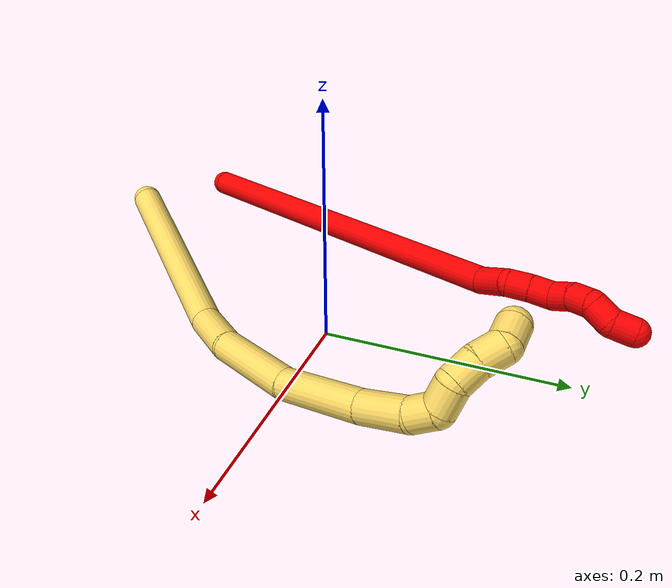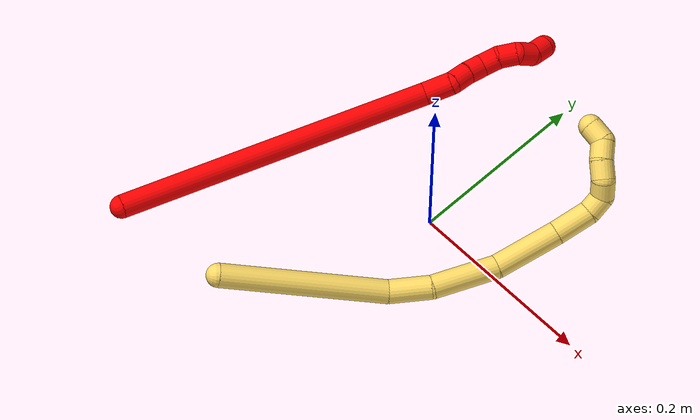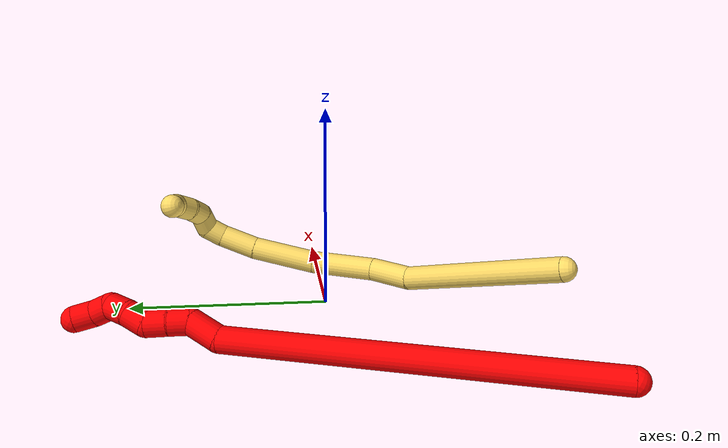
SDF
<sdf version="1.7">
 <world name="default">
  <model name="2">
   <static>0</static>
   <link name="2">
    <collision name="collision-cylinder-e_1_1_4">
     <pose>0.067308 0.139114 -0.078874 -2.08657 0.398384 -0.667127</pose>
     <geometry><cylinder><radius>0.0125</radius><length>0.347012</length></cylinder></geometry>
     <surface>
      <friction><ode><mu>1.16</mu><mu2>1.16</mu2><slip1>0</slip1><slip2>0</slip2></ode></friction>
      <contact><ode><kp>1e+06</kp><kd>1</kd><max_vel>0</max_vel><min_depth>0.001</min_depth></ode></contact>
     </surface>
    </collision>
    <visual name="visual-cylinder-e_1_1_4">
     <pose>0.067308 0.139114 -0.078874 -2.08657 0.398384 -0.667127</pose>
     <geometry><cylinder><radius>0.0125</radius><length>0.347012</length></cylinder></geometry>
     <material><ambient>1 0 0 1</ambient></material>
    </visual>
    <collision name="collision-cylinder-e_2_4_5">
     <pose>0.143535 0.291466 -0.15877 -1.6479 0.591532 -0.635964</pose>
     <geometry><cylinder><radius>0.0125</radius><length>0.031987</length></cylinder></geometry>
     <surface>
      <friction><ode><mu>1.16</mu><mu2>1.16</mu2><slip1>0</slip1><slip2>0</slip2></ode></friction>
      <contact><ode><kp>1e+06</kp><kd>1</kd><max_vel>0</max_vel><min_depth>0.001</min_depth></ode></contact>
     </surface>
    </collision>
    <visual name="visual-cylinder-e_2_4_5">
     <pose>0.143535 0.291466 -0.15877 -1.6479 0.591532 -0.635964</pose>
     <geometry><cylinder><radius>0.0125</radius><length>0.031987</length></cylinder></geometry>
     <material><ambient>1 0 0 1</ambient></material>
    </visual>
    <collision name="collision-cylinder-e_3_5_6">
     <pose>0.153663 0.313304 -0.164899 -2.10651 0.120321 -0.210819</pose>
     <geometry><cylinder><radius>0.0125</radius><length>0.020152</length></cylinder></geometry>
     <surface>
      <friction><ode><mu>1.16</mu><mu2>1.16</mu2><slip1>0</slip1><slip2>0</slip2></ode></friction>
      <contact><ode><kp>1e+06</kp><kd>1</kd><max_vel>0</max_vel><min_depth>0.001</min_depth></ode></contact>
     </surface>
    </collision>
    <visual name="visual-cylinder-e_3_5_6">
     <pose>0.153663 0.313304 -0.164899 -2.10651 0.120321 -0.210819</pose>
     <geometry><cylinder><radius>0.0125</radius><length>0.020152</length></cylinder></geometry>
     <material><ambient>1 0 0 1</ambient></material>
    </visual>
    <collision name="collision-cylinder-e_4_6_7">
     <pose>0.157014 0.330167 -0.1756 -2.16618 0.211487 -0.394972</pose>
     <geometry><cylinder><radius>0.0125</radius><length>0.02041</length></cylinder></geometry>
     <surface>
      <friction><ode><mu>1.16</mu><mu2>1.16</mu2><slip1>0</slip1><slip2>0</slip2></ode></friction>
      <contact><ode><kp>1e+06</kp><kd>1</kd><max_vel>0</max_vel><min_depth>0.001</min_depth></ode></contact>
     </surface>
    </collision>
    <visual name="visual-cylinder-e_4_6_7">
     <pose>0.157014 0.330167 -0.1756 -2.16618 0.211487 -0.394972</pose>
     <geometry><cylinder><radius>0.0125</radius><length>0.02041</length></cylinder></geometry>
     <material><ambient>1 0 0 1</ambient></material>
    </visual>
    <collision name="collision-cylinder-e_5_7_8">
     <pose>0.164011 0.347211 -0.181835 -1.64336 0.503778 -0.539968</pose>
     <geometry><cylinder><radius>0.0125</radius><length>0.020113</length></cylinder></geometry>
     <surface>
      <friction><ode><mu>1.16</mu><mu2>1.16</mu2><slip1>0</slip1><slip2>0</slip2></ode></friction>
      <contact><ode><kp>1e+06</kp><kd>1</kd><max_vel>0</max_vel><min_depth>0.001</min_depth></ode></contact>
     </surface>
    </collision>
    <visual name="visual-cylinder-e_5_7_8">
     <pose>0.164011 0.347211 -0.181835 -1.64336 0.503778 -0.539968</pose>
     <geometry><cylinder><radius>0.0125</radius><length>0.020113</length></cylinder></geometry>
     <material><ambient>1 0 0 1</ambient></material>
    </visual>
    <collision name="collision-cylinder-e_6_8_9">
     <pose>0.175207 0.363384 -0.185055 -1.90699 0.68097 -0.925858</pose>
     <geometry><cylinder><radius>0.0125</radius><length>0.020147</length></cylinder></geometry>
     <surface>
      <friction><ode><mu>1.16</mu><mu2>1.16</mu2><slip1>0</slip1><slip2>0</slip2></ode></friction>
      <contact><ode><kp>1e+06</kp><kd>1</kd><max_vel>0</max_vel><min_depth>0.001</min_depth></ode></contact>
     </surface>
    </collision>
    <visual name="visual-cylinder-e_6_8_9">
     <pose>0.175207 0.363384 -0.185055 -1.90699 0.68097 -0.925858</pose>
     <geometry><cylinder><radius>0.0125</radius><length>0.020147</length></cylinder></geometry>
     <material><ambient>1 0 0 1</ambient></material>
    </visual>
    <collision name="collision-cylinder-e_7_9_10">
     <pose>0.18563 0.375357 -0.195624 -2.62054 0.417136 -1.34204</pose>
     <geometry><cylinder><radius>0.0125</radius><length>0.020146</length></cylinder></geometry>
     <surface>
      <friction><ode><mu>1.16</mu><mu2>1.16</mu2><slip1>0</slip1><slip2>0</slip2></ode></friction>
      <contact><ode><kp>1e+06</kp><kd>1</kd><max_vel>0</max_vel><min_depth>0.001</min_depth></ode></contact>
     </surface>
    </collision>
    <visual name="visual-cylinder-e_7_9_10">
     <pose>0.18563 0.375357 -0.195624 -2.62054 0.417136 -1.34204</pose>
     <geometry><cylinder><radius>0.0125</radius><length>0.020146</length></cylinder></geometry>
     <material><ambient>1 0 0 1</ambient></material>
    </visual>
    <collision name="collision-cylinder-e_8_10_2">
     <pose>0.189861 0.387256 -0.210453 -2.32278 0.014947 -0.034444</pose>
     <geometry><cylinder><radius>0.0125</radius><length>0.020034</length></cylinder></geometry>
     <surface>
      <friction><ode><mu>1.16</mu><mu2>1.16</mu2><slip1>0</slip1><slip2>0</slip2></ode></friction>
      <contact><ode><kp>1e+06</kp><kd>1</kd><max_vel>0</max_vel><min_depth>0.001</min_depth></ode></contact>
     </surface>
    </collision>
    <visual name="visual-cylinder-e_8_10_2">
     <pose>0.189861 0.387256 -0.210453 -2.32278 0.014947 -0.034444</pose>
     <geometry><cylinder><radius>0.0125</radius><length>0.020034</length></cylinder></geometry>
     <material><ambient>1 0 0 1</ambient></material>
    </visual>
    <collision name="collision-sphere-2">
     <pose>0.19001 0.394571 -0.217295 0 -0 0</pose>
     <geometry><sphere><radius>0.0125</radius></sphere></geometry>
     <surface>
      <friction><ode><mu>1.16</mu><mu2>1.16</mu2><slip1>0</slip1><slip2>0</slip2></ode></friction>
      <contact><ode><kp>1e+06</kp><kd>1</kd><max_vel>0</max_vel><min_depth>0.001</min_depth></ode></contact>
     </surface>
    </collision>
    <visual name="visual-sphere-2">
     <pose>0.19001 0.394571 -0.217295 0 -0 0</pose>
     <geometry><sphere><radius>0.0125</radius></sphere></geometry>
     <material><ambient>1 0 0 1</ambient></material>
    </visual>
    <collision name="collision-sphere-10">
     <pose>0.189711 0.379941 -0.203611 0 -0 0</pose>
     <geometry><sphere><radius>0.0125</radius></sphere></geometry>
     <surface>
      <friction><ode><mu>1.16</mu><mu2>1.16</mu2><slip1>0</slip1><slip2>0</slip2></ode></friction>
      <contact><ode><kp>1e+06</kp><kd>1</kd><max_vel>0</max_vel><min_depth>0.001</min_depth></ode></contact>
     </surface>
    </collision>
    <visual name="visual-sphere-10">
     <pose>0.189711 0.379941 -0.203611 0 -0 0</pose>
     <geometry><sphere><radius>0.0125</radius></sphere></geometry>
     <material><ambient>1 0 0 1</ambient></material>
    </visual>
    <collision name="collision-sphere-9">
     <pose>0.181549 0.370772 -0.187637 0 -0 0</pose>
     <geometry><sphere><radius>0.0125</radius></sphere></geometry>
     <surface>
      <friction><ode><mu>1.16</mu><mu2>1.16</mu2><slip1>0</slip1><slip2>0</slip2></ode></friction>
      <contact><ode><kp>1e+06</kp><kd>1</kd><max_vel>0</max_vel><min_depth>0.001</min_depth></ode></contact>
     </surface>
    </collision>
    <visual name="visual-sphere-9">
     <pose>0.181549 0.370772 -0.187637 0 -0 0</pose>
     <geometry><sphere><radius>0.0125</radius></sphere></geometry>
     <material><ambient>1 0 0 1</ambient></material>
    </visual>
    <collision name="collision-sphere-4">
     <pose>0.134616 0.278229 -0.157747 0 -0 0</pose>
     <geometry><sphere><radius>0.0125</radius></sphere></geometry>
     <surface>
      <friction><ode><mu>1.16</mu><mu2>1.16</mu2><slip1>0</slip1><slip2>0</slip2></ode></friction>
      <contact><ode><kp>1e+06</kp><kd>1</kd><max_vel>0</max_vel><min_depth>0.001</min_depth></ode></contact>
     </surface>
    </collision>
    <visual name="visual-sphere-4">
     <pose>0.134616 0.278229 -0.157747 0 -0 0</pose>
     <geometry><sphere><radius>0.0125</radius></sphere></geometry>
     <material><ambient>1 0 0 1</ambient></material>
    </visual>
    <collision name="collision-sphere-1">
     <geometry><sphere><radius>0.0125</radius></sphere></geometry>
     <surface>
      <friction><ode><mu>1.16</mu><mu2>1.16</mu2><slip1>0</slip1><slip2>0</slip2></ode></friction>
      <contact><ode><kp>1e+06</kp><kd>1</kd><max_vel>0</max_vel><min_depth>0.001</min_depth></ode></contact>
     </surface>
    </collision>
    <visual name="visual-sphere-1">
     <geometry><sphere><radius>0.0125</radius></sphere></geometry>
     <material><ambient>1 0 0 1</ambient></material>
    </visual>
    <collision name="collision-sphere-8">
     <pose>0.168866 0.355995 -0.182473 0 -0 0</pose>
     <geometry><sphere><radius>0.0125</radius></sphere></geometry>
     <surface>
      <friction><ode><mu>1.16</mu><mu2>1.16</mu2><slip1>0</slip1><slip2>0</slip2></ode></friction>
      <contact><ode><kp>1e+06</kp><kd>1</kd><max_vel>0</max_vel><min_depth>0.001</min_depth></ode></contact>
     </surface>
    </collision>
    <visual name="visual-sphere-8">
     <pose>0.168866 0.355995 -0.182473 0 -0 0</pose>
     <geometry><sphere><radius>0.0125</radius></sphere></geometry>
     <material><ambient>1 0 0 1</ambient></material>
    </visual>
    <collision name="collision-sphere-5">
     <pose>0.152453 0.304702 -0.159792 0 -0 0</pose>
     <geometry><sphere><radius>0.0125</radius></sphere></geometry>
     <surface>
      <friction><ode><mu>1.16</mu><mu2>1.16</mu2><slip1>0</slip1><slip2>0</slip2></ode></friction>
      <contact><ode><kp>1e+06</kp><kd>1</kd><max_vel>0</max_vel><min_depth>0.001</min_depth></ode></contact>
     </surface>
    </collision>
    <visual name="visual-sphere-5">
     <pose>0.152453 0.304702 -0.159792 0 -0 0</pose>
     <geometry><sphere><radius>0.0125</radius></sphere></geometry>
     <material><ambient>1 0 0 1</ambient></material>
    </visual>
    <collision name="collision-sphere-6">
     <pose>0.154872 0.321906 -0.170005 0 -0 0</pose>
     <geometry><sphere><radius>0.0125</radius></sphere></geometry>
     <surface>
      <friction><ode><mu>1.16</mu><mu2>1.16</mu2><slip1>0</slip1><slip2>0</slip2></ode></friction>
      <contact><ode><kp>1e+06</kp><kd>1</kd><max_vel>0</max_vel><min_depth>0.001</min_depth></ode></contact>
     </surface>
    </collision>
    <visual name="visual-sphere-6">
     <pose>0.154872 0.321906 -0.170005 0 -0 0</pose>
     <geometry><sphere><radius>0.0125</radius></sphere></geometry>
     <material><ambient>1 0 0 1</ambient></material>
    </visual>
    <collision name="collision-sphere-7">
     <pose>0.159156 0.338427 -0.181196 0 -0 0</pose>
     <geometry><sphere><radius>0.0125</radius></sphere></geometry>
     <surface>
      <friction><ode><mu>1.16</mu><mu2>1.16</mu2><slip1>0</slip1><slip2>0</slip2></ode></friction>
      <contact><ode><kp>1e+06</kp><kd>1</kd><max_vel>0</max_vel><min_depth>0.001</min_depth></ode></contact>
     </surface>
    </collision>
    <visual name="visual-sphere-7">
     <pose>0.159156 0.338427 -0.181196 0 -0 0</pose>
     <geometry><sphere><radius>0.0125</radius></sphere></geometry>
     <material><ambient>1 0 0 1</ambient></material>
    </visual>
    <inertial>
     <pose>0.097242 0.200549 -0.109797 0 -0 0</pose>
     <mass>0.5</mass>
     <inertia>
      <ixx>0.000556</ixx>
      <ixy>0</ixy>
      <ixz>0</ixz>
      <iyy>-0.002594</iyy>
      <iyz>0</iyz>
      <izz>-0.004191</izz>
     </inertia>
    </inertial>
   </link>
   <pose>-0.229651 -0.222519 0.011493 0.497434 -0.043542 0.061144</pose>
  </model>
  <model name="5">
   <static>0</static>
   <link name="5">
    <collision name="collision-cylinder-e_1_1_4">
     <pose>0.004571 -0.004872 -0.08706 3.08569 0.052377 1.50575</pose>
     <geometry><cylinder><radius>0.0125</radius><length>0.174631</length></cylinder></geometry>
     <surface>
      <friction><ode><mu>1.16</mu><mu2>1.16</mu2><slip1>0</slip1><slip2>0</slip2></ode></friction>
      <contact><ode><kp>1e+06</kp><kd>1</kd><max_vel>0</max_vel><min_depth>0.001</min_depth></ode></contact>
     </surface>
    </collision>
    <visual name="visual-cylinder-e_1_1_4">
     <pose>0.004571 -0.004872 -0.08706 3.08569 0.052377 1.50575</pose>
     <geometry><cylinder><radius>0.0125</radius><length>0.174631</length></cylinder></geometry>
     <material><ambient>1 0.858824 0.4 1</ambient></material>
    </visual>
    <collision name="collision-cylinder-e_2_4_5">
     <pose>0.01321 -0.004992 -0.195615 -2.92406 0.182708 -1.39607</pose>
     <geometry><cylinder><radius>0.0125</radius><length>0.044774</length></cylinder></geometry>
     <surface>
      <friction><ode><mu>1.16</mu><mu2>1.16</mu2><slip1>0</slip1><slip2>0</slip2></ode></friction>
      <contact><ode><kp>1e+06</kp><kd>1</kd><max_vel>0</max_vel><min_depth>0.001</min_depth></ode></contact>
     </surface>
    </collision>
    <visual name="visual-cylinder-e_2_4_5">
     <pose>0.01321 -0.004992 -0.195615 -2.92406 0.182708 -1.39607</pose>
     <geometry><cylinder><radius>0.0125</radius><length>0.044774</length></cylinder></geometry>
     <material><ambient>1 0.858824 0.4 1</ambient></material>
    </visual>
    <collision name="collision-cylinder-e_3_5_6">
     <pose>0.015858 0.011204 -0.250167 -2.80829 -0.040549 0.239934</pose>
     <geometry><cylinder><radius>0.0125</radius><length>0.070021</length></cylinder></geometry>
     <surface>
      <friction><ode><mu>1.16</mu><mu2>1.16</mu2><slip1>0</slip1><slip2>0</slip2></ode></friction>
      <contact><ode><kp>1e+06</kp><kd>1</kd><max_vel>0</max_vel><min_depth>0.001</min_depth></ode></contact>
     </surface>
    </collision>
    <visual name="visual-cylinder-e_3_5_6">
     <pose>0.015858 0.011204 -0.250167 -2.80829 -0.040549 0.239934</pose>
     <geometry><cylinder><radius>0.0125</radius><length>0.070021</length></cylinder></geometry>
     <material><ambient>1 0.858824 0.4 1</ambient></material>
    </visual>
    <collision name="collision-cylinder-e_4_6_7">
     <pose>0.012247 0.041225 -0.313023 -2.58417 -0.062342 0.21707</pose>
     <geometry><cylinder><radius>0.0125</radius><length>0.070366</length></cylinder></geometry>
     <surface>
      <friction><ode><mu>1.16</mu><mu2>1.16</mu2><slip1>0</slip1><slip2>0</slip2></ode></friction>
      <contact><ode><kp>1e+06</kp><kd>1</kd><max_vel>0</max_vel><min_depth>0.001</min_depth></ode></contact>
     </surface>
    </collision>
    <visual name="visual-cylinder-e_4_6_7">
     <pose>0.012247 0.041225 -0.313023 -2.58417 -0.062342 0.21707</pose>
     <geometry><cylinder><radius>0.0125</radius><length>0.070366</length></cylinder></geometry>
     <material><ambient>1 0.858824 0.4 1</ambient></material>
    </visual>
    <collision name="collision-cylinder-e_5_7_8">
     <pose>0.010569 0.072078 -0.358675 -2.48264 0.025636 -0.074941</pose>
     <geometry><cylinder><radius>0.0125</radius><length>0.040117</length></cylinder></geometry>
     <surface>
      <friction><ode><mu>1.16</mu><mu2>1.16</mu2><slip1>0</slip1><slip2>0</slip2></ode></friction>
      <contact><ode><kp>1e+06</kp><kd>1</kd><max_vel>0</max_vel><min_depth>0.001</min_depth></ode></contact>
     </surface>
    </collision>
    <visual name="visual-cylinder-e_5_7_8">
     <pose>0.010569 0.072078 -0.358675 -2.48264 0.025636 -0.074941</pose>
     <geometry><cylinder><radius>0.0125</radius><length>0.040117</length></cylinder></geometry>
     <material><ambient>1 0.858824 0.4 1</ambient></material>
    </visual>
    <collision name="collision-cylinder-e_6_8_9">
     <pose>0.010608 0.092575 -0.380247 -2.17863 -0.047495 0.090855</pose>
     <geometry><cylinder><radius>0.0125</radius><length>0.020047</length></cylinder></geometry>
     <surface>
      <friction><ode><mu>1.16</mu><mu2>1.16</mu2><slip1>0</slip1><slip2>0</slip2></ode></friction>
      <contact><ode><kp>1e+06</kp><kd>1</kd><max_vel>0</max_vel><min_depth>0.001</min_depth></ode></contact>
     </surface>
    </collision>
    <visual name="visual-cylinder-e_6_8_9">
     <pose>0.010608 0.092575 -0.380247 -2.17863 -0.047495 0.090855</pose>
     <geometry><cylinder><radius>0.0125</radius><length>0.020047</length></cylinder></geometry>
     <material><ambient>1 0.858824 0.4 1</ambient></material>
    </visual>
    <collision name="collision-cylinder-e_7_9_10">
     <pose>0.011552 0.110601 -0.384517 -1.42423 0.142286 -0.122876</pose>
     <geometry><cylinder><radius>0.0125</radius><length>0.02003</length></cylinder></geometry>
     <surface>
      <friction><ode><mu>1.16</mu><mu2>1.16</mu2><slip1>0</slip1><slip2>0</slip2></ode></friction>
      <contact><ode><kp>1e+06</kp><kd>1</kd><max_vel>0</max_vel><min_depth>0.001</min_depth></ode></contact>
     </surface>
    </collision>
    <visual name="visual-cylinder-e_7_9_10">
     <pose>0.011552 0.110601 -0.384517 -1.42423 0.142286 -0.122876</pose>
     <geometry><cylinder><radius>0.0125</radius><length>0.02003</length></cylinder></geometry>
     <material><ambient>1 0.858824 0.4 1</ambient></material>
    </visual>
    <collision name="collision-cylinder-e_8_10_11">
     <pose>0.008685 0.129383 -0.382024 -1.45481 -0.443039 0.395752</pose>
     <geometry><cylinder><radius>0.0125</radius><length>0.020001</length></cylinder></geometry>
     <surface>
      <friction><ode><mu>1.16</mu><mu2>1.16</mu2><slip1>0</slip1><slip2>0</slip2></ode></friction>
      <contact><ode><kp>1e+06</kp><kd>1</kd><max_vel>0</max_vel><min_depth>0.001</min_depth></ode></contact>
     </surface>
    </collision>
    <visual name="visual-cylinder-e_8_10_11">
     <pose>0.008685 0.129383 -0.382024 -1.45481 -0.443039 0.395752</pose>
     <geometry><cylinder><radius>0.0125</radius><length>0.020001</length></cylinder></geometry>
     <material><ambient>1 0.858824 0.4 1</ambient></material>
    </visual>
    <collision name="collision-cylinder-e_9_11_12">
     <pose>-0.000552 0.146985 -0.382055 -1.695 -0.517536 0.582553</pose>
     <geometry><cylinder><radius>0.0125</radius><length>0.020011</length></cylinder></geometry>
     <surface>
      <friction><ode><mu>1.16</mu><mu2>1.16</mu2><slip1>0</slip1><slip2>0</slip2></ode></friction>
      <contact><ode><kp>1e+06</kp><kd>1</kd><max_vel>0</max_vel><min_depth>0.001</min_depth></ode></contact>
     </surface>
    </collision>
    <visual name="visual-cylinder-e_9_11_12">
     <pose>-0.000552 0.146985 -0.382055 -1.695 -0.517536 0.582553</pose>
     <geometry><cylinder><radius>0.0125</radius><length>0.020011</length></cylinder></geometry>
     <material><ambient>1 0.858824 0.4 1</ambient></material>
    </visual>
    <collision name="collision-cylinder-e_10_12_2">
     <pose>-0.01188 0.161061 -0.377685 -0.785427 -0.691505 0.296244</pose>
     <geometry><cylinder><radius>0.0125</radius><length>0.020002</length></cylinder></geometry>
     <surface>
      <friction><ode><mu>1.16</mu><mu2>1.16</mu2><slip1>0</slip1><slip2>0</slip2></ode></friction>
      <contact><ode><kp>1e+06</kp><kd>1</kd><max_vel>0</max_vel><min_depth>0.001</min_depth></ode></contact>
     </surface>
    </collision>
    <visual name="visual-cylinder-e_10_12_2">
     <pose>-0.01188 0.161061 -0.377685 -0.785427 -0.691505 0.296244</pose>
     <geometry><cylinder><radius>0.0125</radius><length>0.020002</length></cylinder></geometry>
     <material><ambient>1 0.858824 0.4 1</ambient></material>
    </visual>
    <collision name="collision-sphere-2">
     <pose>-0.018257 0.166508 -0.372238 0 -0 0</pose>
     <geometry><sphere><radius>0.0125</radius></sphere></geometry>
     <surface>
      <friction><ode><mu>1.16</mu><mu2>1.16</mu2><slip1>0</slip1><slip2>0</slip2></ode></friction>
      <contact><ode><kp>1e+06</kp><kd>1</kd><max_vel>0</max_vel><min_depth>0.001</min_depth></ode></contact>
     </surface>
    </collision>
    <visual name="visual-sphere-2">
     <pose>-0.018257 0.166508 -0.372238 0 -0 0</pose>
     <geometry><sphere><radius>0.0125</radius></sphere></geometry>
     <material><ambient>1 0.858824 0.4 1</ambient></material>
    </visual>
    <collision name="collision-sphere-12">
     <pose>-0.005502 0.155613 -0.383132 0 -0 0</pose>
     <geometry><sphere><radius>0.0125</radius></sphere></geometry>
     <surface>
      <friction><ode><mu>1.16</mu><mu2>1.16</mu2><slip1>0</slip1><slip2>0</slip2></ode></friction>
      <contact><ode><kp>1e+06</kp><kd>1</kd><max_vel>0</max_vel><min_depth>0.001</min_depth></ode></contact>
     </surface>
    </collision>
    <visual name="visual-sphere-12">
     <pose>-0.005502 0.155613 -0.383132 0 -0 0</pose>
     <geometry><sphere><radius>0.0125</radius></sphere></geometry>
     <material><ambient>1 0.858824 0.4 1</ambient></material>
    </visual>
    <collision name="collision-sphere-11">
     <pose>0.004398 0.138357 -0.380978 0 -0 0</pose>
     <geometry><sphere><radius>0.0125</radius></sphere></geometry>
     <surface>
      <friction><ode><mu>1.16</mu><mu2>1.16</mu2><slip1>0</slip1><slip2>0</slip2></ode></friction>
      <contact><ode><kp>1e+06</kp><kd>1</kd><max_vel>0</max_vel><min_depth>0.001</min_depth></ode></contact>
     </surface>
    </collision>
    <visual name="visual-sphere-11">
     <pose>0.004398 0.138357 -0.380978 0 -0 0</pose>
     <geometry><sphere><radius>0.0125</radius></sphere></geometry>
     <material><ambient>1 0.858824 0.4 1</ambient></material>
    </visual>
    <collision name="collision-sphere-10">
     <pose>0.012972 0.120408 -0.383069 0 -0 0</pose>
     <geometry><sphere><radius>0.0125</radius></sphere></geometry>
     <surface>
      <friction><ode><mu>1.16</mu><mu2>1.16</mu2><slip1>0</slip1><slip2>0</slip2></ode></friction>
      <contact><ode><kp>1e+06</kp><kd>1</kd><max_vel>0</max_vel><min_depth>0.001</min_depth></ode></contact>
     </surface>
    </collision>
    <visual name="visual-sphere-10">
     <pose>0.012972 0.120408 -0.383069 0 -0 0</pose>
     <geometry><sphere><radius>0.0125</radius></sphere></geometry>
     <material><ambient>1 0.858824 0.4 1</ambient></material>
    </visual>
    <collision name="collision-sphere-9">
     <pose>0.010132 0.100793 -0.385965 0 -0 0</pose>
     <geometry><sphere><radius>0.0125</radius></sphere></geometry>
     <surface>
      <friction><ode><mu>1.16</mu><mu2>1.16</mu2><slip1>0</slip1><slip2>0</slip2></ode></friction>
      <contact><ode><kp>1e+06</kp><kd>1</kd><max_vel>0</max_vel><min_depth>0.001</min_depth></ode></contact>
     </surface>
    </collision>
    <visual name="visual-sphere-9">
     <pose>0.010132 0.100793 -0.385965 0 -0 0</pose>
     <geometry><sphere><radius>0.0125</radius></sphere></geometry>
     <material><ambient>1 0.858824 0.4 1</ambient></material>
    </visual>
    <collision name="collision-sphere-4">
     <pose>0.009142 -0.009743 -0.174119 0 -0 0</pose>
     <geometry><sphere><radius>0.0125</radius></sphere></geometry>
     <surface>
      <friction><ode><mu>1.16</mu><mu2>1.16</mu2><slip1>0</slip1><slip2>0</slip2></ode></friction>
      <contact><ode><kp>1e+06</kp><kd>1</kd><max_vel>0</max_vel><min_depth>0.001</min_depth></ode></contact>
     </surface>
    </collision>
    <visual name="visual-sphere-4">
     <pose>0.009142 -0.009743 -0.174119 0 -0 0</pose>
     <geometry><sphere><radius>0.0125</radius></sphere></geometry>
     <material><ambient>1 0.858824 0.4 1</ambient></material>
    </visual>
    <collision name="collision-sphere-1">
     <geometry><sphere><radius>0.0125</radius></sphere></geometry>
     <surface>
      <friction><ode><mu>1.16</mu><mu2>1.16</mu2><slip1>0</slip1><slip2>0</slip2></ode></friction>
      <contact><ode><kp>1e+06</kp><kd>1</kd><max_vel>0</max_vel><min_depth>0.001</min_depth></ode></contact>
     </surface>
    </collision>
    <visual name="visual-sphere-1">
     <geometry><sphere><radius>0.0125</radius></sphere></geometry>
     <material><ambient>1 0.858824 0.4 1</ambient></material>
    </visual>
    <collision name="collision-sphere-8">
     <pose>0.011084 0.084356 -0.374529 0 -0 0</pose>
     <geometry><sphere><radius>0.0125</radius></sphere></geometry>
     <surface>
      <friction><ode><mu>1.16</mu><mu2>1.16</mu2><slip1>0</slip1><slip2>0</slip2></ode></friction>
      <contact><ode><kp>1e+06</kp><kd>1</kd><max_vel>0</max_vel><min_depth>0.001</min_depth></ode></contact>
     </surface>
    </collision>
    <visual name="visual-sphere-8">
     <pose>0.011084 0.084356 -0.374529 0 -0 0</pose>
     <geometry><sphere><radius>0.0125</radius></sphere></geometry>
     <material><ambient>1 0.858824 0.4 1</ambient></material>
    </visual>
    <collision name="collision-sphere-5">
     <pose>0.017278 -0.000241 -0.217111 0 -0 0</pose>
     <geometry><sphere><radius>0.0125</radius></sphere></geometry>
     <surface>
      <friction><ode><mu>1.16</mu><mu2>1.16</mu2><slip1>0</slip1><slip2>0</slip2></ode></friction>
      <contact><ode><kp>1e+06</kp><kd>1</kd><max_vel>0</max_vel><min_depth>0.001</min_depth></ode></contact>
     </surface>
    </collision>
    <visual name="visual-sphere-5">
     <pose>0.017278 -0.000241 -0.217111 0 -0 0</pose>
     <geometry><sphere><radius>0.0125</radius></sphere></geometry>
     <material><ambient>1 0.858824 0.4 1</ambient></material>
    </visual>
    <collision name="collision-sphere-6">
     <pose>0.014439 0.022649 -0.283224 0 -0 0</pose>
     <geometry><sphere><radius>0.0125</radius></sphere></geometry>
     <surface>
      <friction><ode><mu>1.16</mu><mu2>1.16</mu2><slip1>0</slip1><slip2>0</slip2></ode></friction>
      <contact><ode><kp>1e+06</kp><kd>1</kd><max_vel>0</max_vel><min_depth>0.001</min_depth></ode></contact>
     </surface>
    </collision>
    <visual name="visual-sphere-6">
     <pose>0.014439 0.022649 -0.283224 0 -0 0</pose>
     <geometry><sphere><radius>0.0125</radius></sphere></geometry>
     <material><ambient>1 0.858824 0.4 1</ambient></material>
    </visual>
    <collision name="collision-sphere-7">
     <pose>0.010055 0.059801 -0.342822 0 -0 0</pose>
     <geometry><sphere><radius>0.0125</radius></sphere></geometry>
     <surface>
      <friction><ode><mu>1.16</mu><mu2>1.16</mu2><slip1>0</slip1><slip2>0</slip2></ode></friction>
      <contact><ode><kp>1e+06</kp><kd>1</kd><max_vel>0</max_vel><min_depth>0.001</min_depth></ode></contact>
     </surface>
    </collision>
    <visual name="visual-sphere-7">
     <pose>0.010055 0.059801 -0.342822 0 -0 0</pose>
     <geometry><sphere><radius>0.0125</radius></sphere></geometry>
     <material><ambient>1 0.858824 0.4 1</ambient></material>
    </visual>
    <inertial>
     <pose>0.00831 0.036649 -0.232118 0 -0 0</pose>
     <mass>0.5</mass>
     <inertia>
      <ixx>0.000559</ixx>
      <ixy>0</ixy>
      <ixz>0</ixz>
      <iyy>0.00038</iyy>
      <iyz>0</iyz>
      <izz>-6.3e-05</izz>
     </inertia>
    </inertial>
   </link>
   <pose>-0.07856 -0.220209 0.054271 1.28648 -0.603315 -0.484568</pose>
  </model>
 </world>
</sdf>
